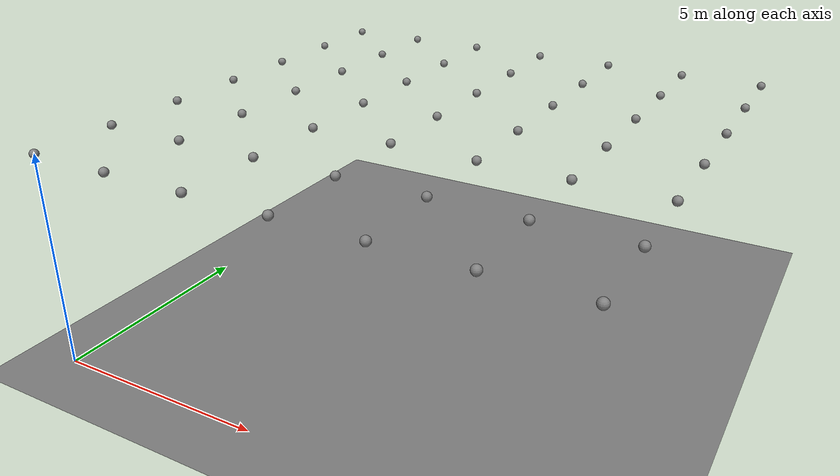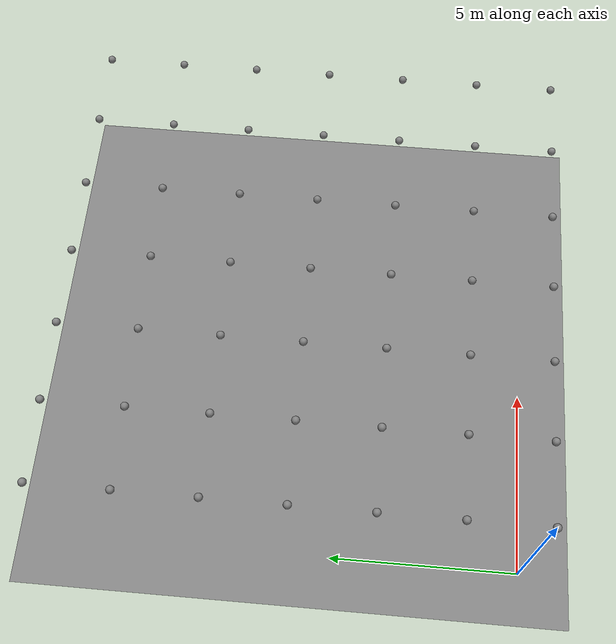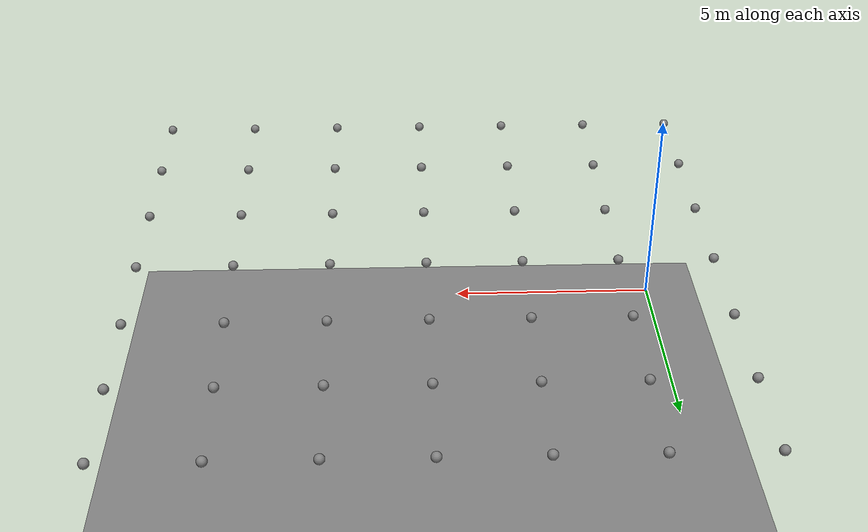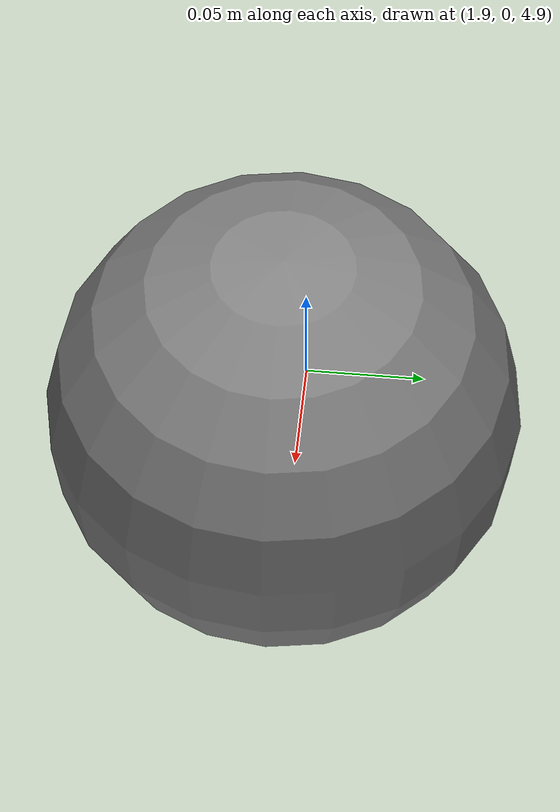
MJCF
<mujoco model="bouncing">
    <compiler angle="degree"/>

    <option jacobian="sparse" cone="elliptic" tolerance="1e-10"/>

    <default>
        <geom solimp=".9 .9 .01"/>
    </default>

    <worldbody>
        <light directional="true" diffuse=".8 .8 .8" pos="0 0 10" dir="0 0 -10"/>

        <geom pos="0 0 0" type="plane" size="200 200 5" friction="0 0 0"/>
		<body pos="0.000000 0.000000 5.000000" quat="1 0 0 0">
			<inertial pos="0 0 0" mass="10.000000" diaginertia="0.040000 0.040000 0.040000"/>
			<freejoint/>
			<geom type="sphere" size="0.100000" friction="0.000000 0 0"/>
		</body>
		<body pos="0.000000 2.000000 5.000000" quat="1 0 0 0">
			<inertial pos="0 0 0" mass="10.000000" diaginertia="0.040000 0.040000 0.040000"/>
			<freejoint/>
			<geom type="sphere" size="0.100000" friction="0.000000 0 0"/>
		</body>
		<body pos="0.000000 4.000000 5.000000" quat="1 0 0 0">
			<inertial pos="0 0 0" mass="10.000000" diaginertia="0.040000 0.040000 0.040000"/>
			<freejoint/>
			<geom type="sphere" size="0.100000" friction="0.000000 0 0"/>
		</body>
		<body pos="0.000000 6.000000 5.000000" quat="1 0 0 0">
			<inertial pos="0 0 0" mass="10.000000" diaginertia="0.040000 0.040000 0.040000"/>
			<freejoint/>
			<geom type="sphere" size="0.100000" friction="0.000000 0 0"/>
		</body>
		<body pos="0.000000 8.000000 5.000000" quat="1 0 0 0">
			<inertial pos="0 0 0" mass="10.000000" diaginertia="0.040000 0.040000 0.040000"/>
			<freejoint/>
			<geom type="sphere" size="0.100000" friction="0.000000 0 0"/>
		</body>
		<body pos="0.000000 10.000000 5.000000" quat="1 0 0 0">
			<inertial pos="0 0 0" mass="10.000000" diaginertia="0.040000 0.040000 0.040000"/>
			<freejoint/>
			<geom type="sphere" size="0.100000" friction="0.000000 0 0"/>
		</body>
		<body pos="0.000000 12.000000 5.000000" quat="1 0 0 0">
			<inertial pos="0 0 0" mass="10.000000" diaginertia="0.040000 0.040000 0.040000"/>
			<freejoint/>
			<geom type="sphere" size="0.100000" friction="0.000000 0 0"/>
		</body>
		<body pos="2.000000 0.000000 5.000000" quat="1 0 0 0">
			<inertial pos="0 0 0" mass="10.000000" diaginertia="0.040000 0.040000 0.040000"/>
			<freejoint/>
			<geom type="sphere" size="0.100000" friction="0.000000 0 0"/>
		</body>
		<body pos="2.000000 2.000000 5.000000" quat="1 0 0 0">
			<inertial pos="0 0 0" mass="10.000000" diaginertia="0.040000 0.040000 0.040000"/>
			<freejoint/>
			<geom type="sphere" size="0.100000" friction="0.000000 0 0"/>
		</body>
		<body pos="2.000000 4.000000 5.000000" quat="1 0 0 0">
			<inertial pos="0 0 0" mass="10.000000" diaginertia="0.040000 0.040000 0.040000"/>
			<freejoint/>
			<geom type="sphere" size="0.100000" friction="0.000000 0 0"/>
		</body>
		<body pos="2.000000 6.000000 5.000000" quat="1 0 0 0">
			<inertial pos="0 0 0" mass="10.000000" diaginertia="0.040000 0.040000 0.040000"/>
			<freejoint/>
			<geom type="sphere" size="0.100000" friction="0.000000 0 0"/>
		</body>
		<body pos="2.000000 8.000000 5.000000" quat="1 0 0 0">
			<inertial pos="0 0 0" mass="10.000000" diaginertia="0.040000 0.040000 0.040000"/>
			<freejoint/>
			<geom type="sphere" size="0.100000" friction="0.000000 0 0"/>
		</body>
		<body pos="2.000000 10.000000 5.000000" quat="1 0 0 0">
			<inertial pos="0 0 0" mass="10.000000" diaginertia="0.040000 0.040000 0.040000"/>
			<freejoint/>
			<geom type="sphere" size="0.100000" friction="0.000000 0 0"/>
		</body>
		<body pos="2.000000 12.000000 5.000000" quat="1 0 0 0">
			<inertial pos="0 0 0" mass="10.000000" diaginertia="0.040000 0.040000 0.040000"/>
			<freejoint/>
			<geom type="sphere" size="0.100000" friction="0.000000 0 0"/>
		</body>
		<body pos="4.000000 0.000000 5.000000" quat="1 0 0 0">
			<inertial pos="0 0 0" mass="10.000000" diaginertia="0.040000 0.040000 0.040000"/>
			<freejoint/>
			<geom type="sphere" size="0.100000" friction="0.000000 0 0"/>
		</body>
		<body pos="4.000000 2.000000 5.000000" quat="1 0 0 0">
			<inertial pos="0 0 0" mass="10.000000" diaginertia="0.040000 0.040000 0.040000"/>
			<freejoint/>
			<geom type="sphere" size="0.100000" friction="0.000000 0 0"/>
		</body>
		<body pos="4.000000 4.000000 5.000000" quat="1 0 0 0">
			<inertial pos="0 0 0" mass="10.000000" diaginertia="0.040000 0.040000 0.040000"/>
			<freejoint/>
			<geom type="sphere" size="0.100000" friction="0.000000 0 0"/>
		</body>
		<body pos="4.000000 6.000000 5.000000" quat="1 0 0 0">
			<inertial pos="0 0 0" mass="10.000000" diaginertia="0.040000 0.040000 0.040000"/>
			<freejoint/>
			<geom type="sphere" size="0.100000" friction="0.000000 0 0"/>
		</body>
		<body pos="4.000000 8.000000 5.000000" quat="1 0 0 0">
			<inertial pos="0 0 0" mass="10.000000" diaginertia="0.040000 0.040000 0.040000"/>
			<freejoint/>
			<geom type="sphere" size="0.100000" friction="0.000000 0 0"/>
		</body>
		<body pos="4.000000 10.000000 5.000000" quat="1 0 0 0">
			<inertial pos="0 0 0" mass="10.000000" diaginertia="0.040000 0.040000 0.040000"/>
			<freejoint/>
			<geom type="sphere" size="0.100000" friction="0.000000 0 0"/>
		</body>
		<body pos="4.000000 12.000000 5.000000" quat="1 0 0 0">
			<inertial pos="0 0 0" mass="10.000000" diaginertia="0.040000 0.040000 0.040000"/>
			<freejoint/>
			<geom type="sphere" size="0.100000" friction="0.000000 0 0"/>
		</body>
		<body pos="6.000000 0.000000 5.000000" quat="1 0 0 0">
			<inertial pos="0 0 0" mass="10.000000" diaginertia="0.040000 0.040000 0.040000"/>
			<freejoint/>
			<geom type="sphere" size="0.100000" friction="0.000000 0 0"/>
		</body>
		<body pos="6.000000 2.000000 5.000000" quat="1 0 0 0">
			<inertial pos="0 0 0" mass="10.000000" diaginertia="0.040000 0.040000 0.040000"/>
			<freejoint/>
			<geom type="sphere" size="0.100000" friction="0.000000 0 0"/>
		</body>
		<body pos="6.000000 4.000000 5.000000" quat="1 0 0 0">
			<inertial pos="0 0 0" mass="10.000000" diaginertia="0.040000 0.040000 0.040000"/>
			<freejoint/>
			<geom type="sphere" size="0.100000" friction="0.000000 0 0"/>
		</body>
		<body pos="6.000000 6.000000 5.000000" quat="1 0 0 0">
			<inertial pos="0 0 0" mass="10.000000" diaginertia="0.040000 0.040000 0.040000"/>
			<freejoint/>
			<geom type="sphere" size="0.100000" friction="0.000000 0 0"/>
		</body>
		<body pos="6.000000 8.000000 5.000000" quat="1 0 0 0">
			<inertial pos="0 0 0" mass="10.000000" diaginertia="0.040000 0.040000 0.040000"/>
			<freejoint/>
			<geom type="sphere" size="0.100000" friction="0.000000 0 0"/>
		</body>
		<body pos="6.000000 10.000000 5.000000" quat="1 0 0 0">
			<inertial pos="0 0 0" mass="10.000000" diaginertia="0.040000 0.040000 0.040000"/>
			<freejoint/>
			<geom type="sphere" size="0.100000" friction="0.000000 0 0"/>
		</body>
		<body pos="6.000000 12.000000 5.000000" quat="1 0 0 0">
			<inertial pos="0 0 0" mass="10.000000" diaginertia="0.040000 0.040000 0.040000"/>
			<freejoint/>
			<geom type="sphere" size="0.100000" friction="0.000000 0 0"/>
		</body>
		<body pos="8.000000 0.000000 5.000000" quat="1 0 0 0">
			<inertial pos="0 0 0" mass="10.000000" diaginertia="0.040000 0.040000 0.040000"/>
			<freejoint/>
			<geom type="sphere" size="0.100000" friction="0.000000 0 0"/>
		</body>
		<body pos="8.000000 2.000000 5.000000" quat="1 0 0 0">
			<inertial pos="0 0 0" mass="10.000000" diaginertia="0.040000 0.040000 0.040000"/>
			<freejoint/>
			<geom type="sphere" size="0.100000" friction="0.000000 0 0"/>
		</body>
		<body pos="8.000000 4.000000 5.000000" quat="1 0 0 0">
			<inertial pos="0 0 0" mass="10.000000" diaginertia="0.040000 0.040000 0.040000"/>
			<freejoint/>
			<geom type="sphere" size="0.100000" friction="0.000000 0 0"/>
		</body>
		<body pos="8.000000 6.000000 5.000000" quat="1 0 0 0">
			<inertial pos="0 0 0" mass="10.000000" diaginertia="0.040000 0.040000 0.040000"/>
			<freejoint/>
			<geom type="sphere" size="0.100000" friction="0.000000 0 0"/>
		</body>
		<body pos="8.000000 8.000000 5.000000" quat="1 0 0 0">
			<inertial pos="0 0 0" mass="10.000000" diaginertia="0.040000 0.040000 0.040000"/>
			<freejoint/>
			<geom type="sphere" size="0.100000" friction="0.000000 0 0"/>
		</body>
		<body pos="8.000000 10.000000 5.000000" quat="1 0 0 0">
			<inertial pos="0 0 0" mass="10.000000" diaginertia="0.040000 0.040000 0.040000"/>
			<freejoint/>
			<geom type="sphere" size="0.100000" friction="0.000000 0 0"/>
		</body>
		<body pos="8.000000 12.000000 5.000000" quat="1 0 0 0">
			<inertial pos="0 0 0" mass="10.000000" diaginertia="0.040000 0.040000 0.040000"/>
			<freejoint/>
			<geom type="sphere" size="0.100000" friction="0.000000 0 0"/>
		</body>
		<body pos="10.000000 0.000000 5.000000" quat="1 0 0 0">
			<inertial pos="0 0 0" mass="10.000000" diaginertia="0.040000 0.040000 0.040000"/>
			<freejoint/>
			<geom type="sphere" size="0.100000" friction="0.000000 0 0"/>
		</body>
		<body pos="10.000000 2.000000 5.000000" quat="1 0 0 0">
			<inertial pos="0 0 0" mass="10.000000" diaginertia="0.040000 0.040000 0.040000"/>
			<freejoint/>
			<geom type="sphere" size="0.100000" friction="0.000000 0 0"/>
		</body>
		<body pos="10.000000 4.000000 5.000000" quat="1 0 0 0">
			<inertial pos="0 0 0" mass="10.000000" diaginertia="0.040000 0.040000 0.040000"/>
			<freejoint/>
			<geom type="sphere" size="0.100000" friction="0.000000 0 0"/>
		</body>
		<body pos="10.000000 6.000000 5.000000" quat="1 0 0 0">
			<inertial pos="0 0 0" mass="10.000000" diaginertia="0.040000 0.040000 0.040000"/>
			<freejoint/>
			<geom type="sphere" size="0.100000" friction="0.000000 0 0"/>
		</body>
		<body pos="10.000000 8.000000 5.000000" quat="1 0 0 0">
			<inertial pos="0 0 0" mass="10.000000" diaginertia="0.040000 0.040000 0.040000"/>
			<freejoint/>
			<geom type="sphere" size="0.100000" friction="0.000000 0 0"/>
		</body>
		<body pos="10.000000 10.000000 5.000000" quat="1 0 0 0">
			<inertial pos="0 0 0" mass="10.000000" diaginertia="0.040000 0.040000 0.040000"/>
			<freejoint/>
			<geom type="sphere" size="0.100000" friction="0.000000 0 0"/>
		</body>
		<body pos="10.000000 12.000000 5.000000" quat="1 0 0 0">
			<inertial pos="0 0 0" mass="10.000000" diaginertia="0.040000 0.040000 0.040000"/>
			<freejoint/>
			<geom type="sphere" size="0.100000" friction="0.000000 0 0"/>
		</body>
		<body pos="12.000000 0.000000 5.000000" quat="1 0 0 0">
			<inertial pos="0 0 0" mass="10.000000" diaginertia="0.040000 0.040000 0.040000"/>
			<freejoint/>
			<geom type="sphere" size="0.100000" friction="0.000000 0 0"/>
		</body>
		<body pos="12.000000 2.000000 5.000000" quat="1 0 0 0">
			<inertial pos="0 0 0" mass="10.000000" diaginertia="0.040000 0.040000 0.040000"/>
			<freejoint/>
			<geom type="sphere" size="0.100000" friction="0.000000 0 0"/>
		</body>
		<body pos="12.000000 4.000000 5.000000" quat="1 0 0 0">
			<inertial pos="0 0 0" mass="10.000000" diaginertia="0.040000 0.040000 0.040000"/>
			<freejoint/>
			<geom type="sphere" size="0.100000" friction="0.000000 0 0"/>
		</body>
		<body pos="12.000000 6.000000 5.000000" quat="1 0 0 0">
			<inertial pos="0 0 0" mass="10.000000" diaginertia="0.040000 0.040000 0.040000"/>
			<freejoint/>
			<geom type="sphere" size="0.100000" friction="0.000000 0 0"/>
		</body>
		<body pos="12.000000 8.000000 5.000000" quat="1 0 0 0">
			<inertial pos="0 0 0" mass="10.000000" diaginertia="0.040000 0.040000 0.040000"/>
			<freejoint/>
			<geom type="sphere" size="0.100000" friction="0.000000 0 0"/>
		</body>
		<body pos="12.000000 10.000000 5.000000" quat="1 0 0 0">
			<inertial pos="0 0 0" mass="10.000000" diaginertia="0.040000 0.040000 0.040000"/>
			<freejoint/>
			<geom type="sphere" size="0.100000" friction="0.000000 0 0"/>
		</body>
		<body pos="12.000000 12.000000 5.000000" quat="1 0 0 0">
			<inertial pos="0 0 0" mass="10.000000" diaginertia="0.040000 0.040000 0.040000"/>
			<freejoint/>
			<geom type="sphere" size="0.100000" friction="0.000000 0 0"/>
		</body>

    </worldbody>
</mujoco>
